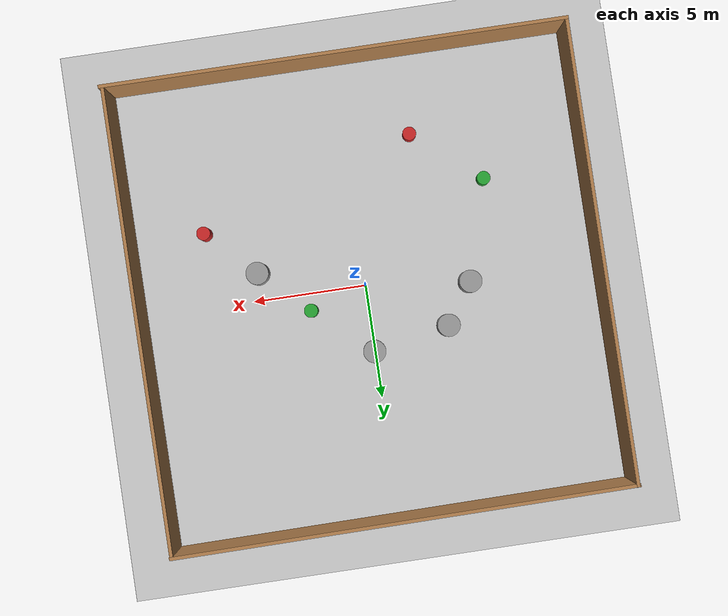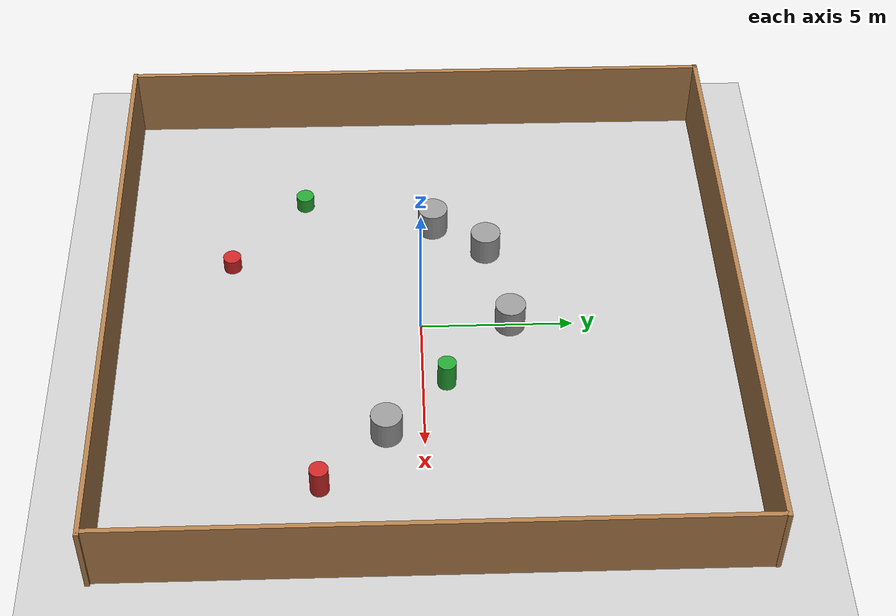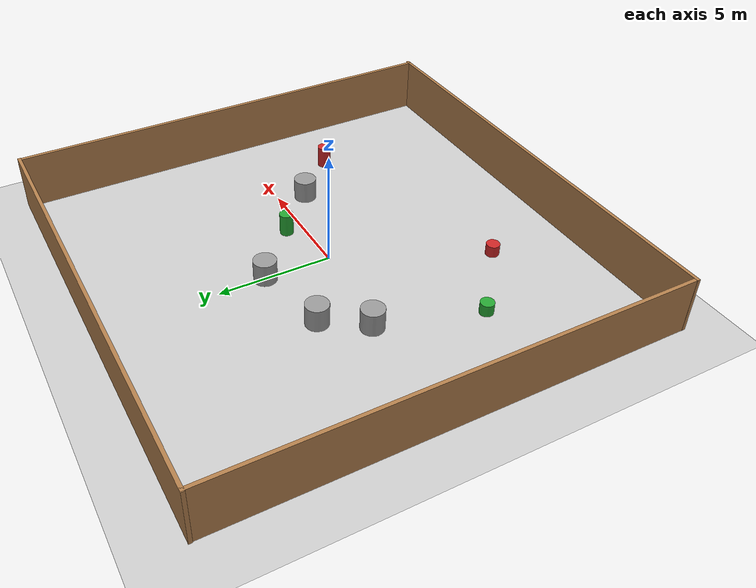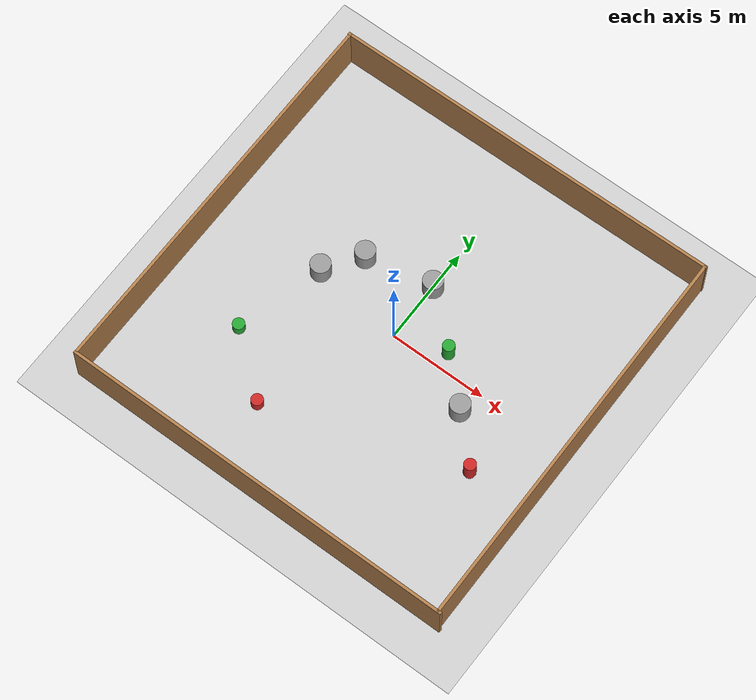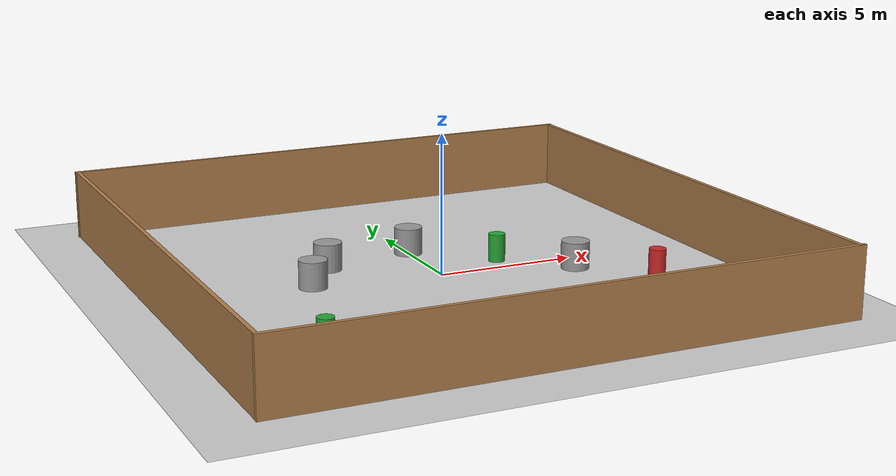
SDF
<sdf version="1.7">
 <world name="default">
  <light name="sun" type="directional">
   <pose>0 0 10 0 -0 0</pose>
   <diffuse>0.8 0.8 0.8 1</diffuse>
   <specular>0.2 0.2 0.2 1</specular>
   <attenuation>
    <range>1000</range>
    <constant>0.9</constant>
    <linear>0.01</linear>
    <quadratic>0.001</quadratic>
   </attenuation>
   <direction>-0.5 0.1 -0.9</direction>
   <spot><inner_angle>0</inner_angle><outer_angle>0</outer_angle><falloff>0</falloff></spot>
  </light>
  <model name="ground_plane">
   <static>1</static>
   <link name="link">
    <collision name="collision">
     <geometry><plane><normal>0 0 1</normal><size>100 100</size></plane></geometry>
     <surface>
      <contact><collide_bitmask>65535</collide_bitmask></contact>
      <friction><ode><mu>100</mu><mu2>50</mu2></ode></friction>
     </surface>
    </collision>
    <visual name="visual">
     <cast_shadows>0</cast_shadows>
     <geometry><plane><normal>0 0 1</normal><size>100 100</size></plane></geometry>
     <material>
      <script><uri>file://media/materials/scripts/gazebo.material</uri><name>Gazebo/Grey</name></script>
     </material>
    </visual>
   </link>
  </model>
  <gravity>0 0 -9.8</gravity>
  <magnetic_field>6e-06 2.3e-05 -4.2e-05</magnetic_field>
  <atmosphere type="adiabatic"/>
  <physics type="ode">
   <max_step_size>0.001</max_step_size>
   <real_time_factor>1</real_time_factor>
   <real_time_update_rate>1000</real_time_update_rate>
  </physics>
  <scene><ambient>0.4 0.4 0.4 1</ambient><background>0.7 0.7 0.7 1</background><shadows>1</shadows></scene>
  <spherical_coordinates>
   <surface_model>EARTH_WGS84</surface_model>
   <latitude_deg>0</latitude_deg>
   <longitude_deg>0</longitude_deg>
   <elevation>0</elevation>
   <heading_deg>0</heading_deg>
  </spherical_coordinates>
  <model name="box_house0301">
   <model name="box_house">
    <link name="Wall_4">
     <pose>-8.08058 -0.073775 0 0 -0 1.5708</pose>
     <inertial>
      <inertia><ixx>0</ixx><ixy>0</ixy><ixz>0</ixz><iyy>0</iyy><iyz>0</iyz><izz>0</izz></inertia>
      <mass>0</mass>
     </inertial>
     <visual name="Wall_4_Visual">
      <pose>0 0 1.25 0 -0 0</pose>
      <geometry><box><size>20.167 0.15 2.5</size></box></geometry>
      <material>
       <script><uri>file://media/materials/scripts/gazebo.material</uri><name>Gazebo/Wood</name></script>
       <ambient>1 1 1 1</ambient>
       <shader type="pixel"/>
      </material>
      <meta><layer>0</layer></meta>
     </visual>
     <collision name="Wall_4_Collision">
      <pose>0 0 1.25 0 -0 0</pose>
      <geometry><box><size>20.167 0.15 2.5</size></box></geometry>
      <surface>
       <friction>
        <ode><mu>1</mu><mu2>1</mu2><fdir1>0 0 0</fdir1><slip1>0</slip1><slip2>0</slip2></ode>
        <torsional>
         <coefficient>1</coefficient>
         <patch_radius>0</patch_radius>
         <surface_radius>0</surface_radius>
         <use_patch_radius>1</use_patch_radius>
         <ode><slip>0</slip></ode>
        </torsional>
       </friction>
       <bounce><restitution_coefficient>0</restitution_coefficient><threshold>1e+06</threshold></bounce>
       <contact>
        <collide_without_contact>0</collide_without_contact>
        <collide_without_contact_bitmask>1</collide_without_contact_bitmask>
        <collide_bitmask>1</collide_bitmask>
        <ode>
         <soft_cfm>0</soft_cfm>
         <soft_erp>0.2</soft_erp>
         <kp>1e+13</kp>
         <kd>1</kd>
         <max_vel>0.01</max_vel>
         <min_depth>0</min_depth>
        </ode>
        <bullet>
         <split_impulse>1</split_impulse>
         <split_impulse_penetration_threshold>-0.01</split_impulse_penetration_threshold>
         <soft_cfm>0</soft_cfm>
         <soft_erp>0.2</soft_erp>
         <kp>1e+13</kp>
         <kd>1</kd>
        </bullet>
       </contact>
      </surface>
     </collision>
    </link>
    <link name="Wall_4_clone">
     <pose>1.99967 -10.1978 0 0 -0 0.000695</pose>
     <inertial>
      <inertia><ixx>0</ixx><ixy>0</ixy><ixz>0</ixz><iyy>0</iyy><iyz>0</iyz><izz>0</izz></inertia>
      <mass>0</mass>
     </inertial>
     <visual name="Wall_4_Visual">
      <pose>0 0 1.25 0 -0 0</pose>
      <geometry><box><size>20.3338 0.15 2.5</size></box></geometry>
      <material>
       <script><uri>file://media/materials/scripts/gazebo.material</uri><name>Gazebo/Wood</name></script>
       <ambient>1 1 1 1</ambient>
       <shader type="pixel"/>
      </material>
      <meta><layer>0</layer></meta>
     </visual>
     <collision name="Wall_4_Collision">
      <pose>0 0 1.25 0 -0 0</pose>
      <geometry><box><size>20.3338 0.15 2.5</size></box></geometry>
      <surface>
       <friction>
        <ode><mu>1</mu><mu2>1</mu2><fdir1>0 0 0</fdir1><slip1>0</slip1><slip2>0</slip2></ode>
        <torsional>
         <coefficient>1</coefficient>
         <patch_radius>0</patch_radius>
         <surface_radius>0</surface_radius>
         <use_patch_radius>1</use_patch_radius>
         <ode><slip>0</slip></ode>
        </torsional>
       </friction>
       <bounce><restitution_coefficient>0</restitution_coefficient><threshold>1e+06</threshold></bounce>
       <contact>
        <collide_without_contact>0</collide_without_contact>
        <collide_without_contact_bitmask>1</collide_without_contact_bitmask>
        <collide_bitmask>1</collide_bitmask>
        <ode>
         <soft_cfm>0</soft_cfm>
         <soft_erp>0.2</soft_erp>
         <kp>1e+13</kp>
         <kd>1</kd>
         <max_vel>0.01</max_vel>
         <min_depth>0</min_depth>
        </ode>
        <bullet>
         <split_impulse>1</split_impulse>
         <split_impulse_penetration_threshold>-0.01</split_impulse_penetration_threshold>
         <soft_cfm>0</soft_cfm>
         <soft_erp>0.2</soft_erp>
         <kp>1e+13</kp>
         <kd>1</kd>
        </bullet>
       </contact>
      </surface>
     </collision>
    </link>
    <link name="Wall_4_clone_0">
     <pose>1.90617 10.0187 0 0 -0 -3.13386</pose>
     <inertial>
      <inertia><ixx>0</ixx><ixy>0</ixy><ixz>0</ixz><iyy>0</iyy><iyz>0</iyz><izz>0</izz></inertia>
      <mass>0</mass>
     </inertial>
     <visual name="Wall_4_Visual">
      <pose>0 0 1.25 0 -0 0</pose>
      <geometry><box><size>20.1884 0.15 2.5</size></box></geometry>
      <material>
       <script><uri>file://media/materials/scripts/gazebo.material</uri><name>Gazebo/Wood</name></script>
       <ambient>1 1 1 1</ambient>
       <shader type="pixel"/>
      </material>
      <meta><layer>0</layer></meta>
     </visual>
     <collision name="Wall_4_Collision">
      <pose>0 0 1.25 0 -0 0</pose>
      <geometry><box><size>20.1884 0.15 2.5</size></box></geometry>
      <surface>
       <friction>
        <ode><mu>1</mu><mu2>1</mu2><fdir1>0 0 0</fdir1><slip1>0</slip1><slip2>0</slip2></ode>
        <torsional>
         <coefficient>1</coefficient>
         <patch_radius>0</patch_radius>
         <surface_radius>0</surface_radius>
         <use_patch_radius>1</use_patch_radius>
         <ode><slip>0</slip></ode>
        </torsional>
       </friction>
       <bounce><restitution_coefficient>0</restitution_coefficient><threshold>1e+06</threshold></bounce>
       <contact>
        <collide_without_contact>0</collide_without_contact>
        <collide_without_contact_bitmask>1</collide_without_contact_bitmask>
        <collide_bitmask>1</collide_bitmask>
        <ode>
         <soft_cfm>0</soft_cfm>
         <soft_erp>0.2</soft_erp>
         <kp>1e+13</kp>
         <kd>1</kd>
         <max_vel>0.01</max_vel>
         <min_depth>0</min_depth>
        </ode>
        <bullet>
         <split_impulse>1</split_impulse>
         <split_impulse_penetration_threshold>-0.01</split_impulse_penetration_threshold>
         <soft_cfm>0</soft_cfm>
         <soft_erp>0.2</soft_erp>
         <kp>1e+13</kp>
         <kd>1</kd>
        </bullet>
       </contact>
      </surface>
     </collision>
    </link>
    <link name="Wall_4_clone_clone">
     <pose>11.9479 -0.044702 0 0 0 -1.56621</pose>
     <inertial>
      <inertia><ixx>0</ixx><ixy>0</ixy><ixz>0</ixz><iyy>0</iyy><iyz>0</iyz><izz>0</izz></inertia>
      <mass>0</mass>
     </inertial>
     <visual name="Wall_4_Visual">
      <pose>0 0 1.25 0 -0 0</pose>
      <geometry><box><size>20.3338 0.15 2.5</size></box></geometry>
      <material>
       <script><uri>file://media/materials/scripts/gazebo.material</uri><name>Gazebo/Wood</name></script>
       <ambient>1 1 1 1</ambient>
       <shader type="pixel"/>
      </material>
      <meta><layer>0</layer></meta>
     </visual>
     <collision name="Wall_4_Collision">
      <pose>0 0 1.25 0 -0 0</pose>
      <geometry><box><size>20.3338 0.15 2.5</size></box></geometry>
      <surface>
       <friction>
        <ode><mu>1</mu><mu2>1</mu2><fdir1>0 0 0</fdir1><slip1>0</slip1><slip2>0</slip2></ode>
        <torsional>
         <coefficient>1</coefficient>
         <patch_radius>0</patch_radius>
         <surface_radius>0</surface_radius>
         <use_patch_radius>1</use_patch_radius>
         <ode><slip>0</slip></ode>
        </torsional>
       </friction>
       <bounce><restitution_coefficient>0</restitution_coefficient><threshold>1e+06</threshold></bounce>
       <contact>
        <collide_without_contact>0</collide_without_contact>
        <collide_without_contact_bitmask>1</collide_without_contact_bitmask>
        <collide_bitmask>1</collide_bitmask>
        <ode>
         <soft_cfm>0</soft_cfm>
         <soft_erp>0.2</soft_erp>
         <kp>1e+13</kp>
         <kd>1</kd>
         <max_vel>0.01</max_vel>
         <min_depth>0</min_depth>
        </ode>
        <bullet>
         <split_impulse>1</split_impulse>
         <split_impulse_penetration_threshold>-0.01</split_impulse_penetration_threshold>
         <soft_cfm>0</soft_cfm>
         <soft_erp>0.2</soft_erp>
         <kp>1e+13</kp>
         <kd>1</kd>
        </bullet>
       </contact>
      </surface>
     </collision>
    </link>
    <static>1</static>
    <pose>-0.12382 0.131635 0 0 -0 0</pose>
   </model>
   <static>1</static>
   <pose>-1.9764 0.05996 0 0 -0 0</pose>
  </model>
  <model name="unit_cylinder">
   <pose>-4.57746 0.509885 0.499998 3e-06 -3e-06 0</pose>
   <link name="link">
    <inertial>
     <mass>1</mass>
     <inertia><ixx>0.145833</ixx><ixy>0</ixy><ixz>0</ixz><iyy>0.145833</iyy><iyz>0</iyz><izz>0.125</izz></inertia>
    </inertial>
    <collision name="collision">
     <geometry><cylinder><radius>0.5</radius><length>1</length></cylinder></geometry>
    </collision>
    <visual name="visual">
     <geometry><cylinder><radius>0.5</radius><length>1</length></cylinder></geometry>
     <material>
      <script><name>Gazebo/Grey</name><uri>file://media/materials/scripts/gazebo.material</uri></script>
     </material>
    </visual>
   </link>
  </model>
  <model name="unit_cylinder_0">
   <pose>0.021507 2.93289 0.5 0 -0 0</pose>
   <link name="link">
    <inertial>
     <mass>1</mass>
     <inertia><ixx>0.145833</ixx><ixy>0</ixy><ixz>0</ixz><iyy>0.145833</iyy><iyz>0</iyz><izz>0.125</izz></inertia>
    </inertial>
    <collision name="collision">
     <geometry><cylinder><radius>0.5</radius><length>1</length></cylinder></geometry>
    </collision>
    <visual name="visual">
     <geometry><cylinder><radius>0.5</radius><length>1</length></cylinder></geometry>
     <material>
      <script><name>Gazebo/Grey</name><uri>file://media/materials/scripts/gazebo.material</uri></script>
     </material>
    </visual>
   </link>
  </model>
  <model name="unit_cylinder_1">
   <pose>4.61033 -1.19516 0.5 0 -0 0</pose>
   <link name="link">
    <inertial>
     <mass>1</mass>
     <inertia><ixx>0.145833</ixx><ixy>0</ixy><ixz>0</ixz><iyy>0.145833</iyy><iyz>0</iyz><izz>0.125</izz></inertia>
    </inertial>
    <collision name="collision">
     <geometry><cylinder><radius>0.5</radius><length>1</length></cylinder></geometry>
    </collision>
    <visual name="visual">
     <geometry><cylinder><radius>0.5</radius><length>1</length></cylinder></geometry>
     <material>
      <script><name>Gazebo/Grey</name><uri>file://media/materials/scripts/gazebo.material</uri></script>
     </material>
    </visual>
   </link>
  </model>
  <model name="unit_cylinder_3">
   <pose>-3.35516 2.27644 0.5 0 -0 0.646065</pose>
   <link name="link">
    <inertial>
     <mass>1</mass>
     <inertia><ixx>0.145833</ixx><ixy>0</ixy><ixz>0</ixz><iyy>0.145833</iyy><iyz>0</iyz><izz>0.125</izz></inertia>
    </inertial>
    <collision name="collision">
     <geometry><cylinder><radius>0.5</radius><length>1</length></cylinder></geometry>
    </collision>
    <visual name="visual">
     <geometry><cylinder><radius>0.5</radius><length>1</length></cylinder></geometry>
     <material>
      <script><name>Gazebo/Grey</name><uri>file://media/materials/scripts/gazebo.material</uri></script>
     </material>
    </visual>
   </link>
  </model>
  <model name="Green_box">
   <link name="link">
    <inertial>
     <mass>5969.03</mass>
     <inertia><ixx>870.483</ixx><ixy>0</ixy><ixz>0</ixz><iyy>870.483</iyy><iyz>0</iyz><izz>746.128</izz></inertia>
    </inertial>
    <visual name="visual">
     <geometry><cylinder><radius>0.3</radius><length>1</length></cylinder></geometry>
     <material>
      <script><name>Gazebo/Green</name><uri>file://media/materials/scripts/gazebo.material</uri></script>
      <shader type="vertex"><normal_map>__default__</normal_map></shader>
      <ambient>0 1 0 1</ambient>
      <diffuse>0 1 0 1</diffuse>
      <specular>0.1 0.1 0.1 1</specular>
      <emissive>0 0 0 1</emissive>
     </material>
    </visual>
    <collision name="collision">
     <geometry><cylinder><radius>0.3</radius><length>1</length></cylinder></geometry>
     <surface>
      <friction>
       <ode><mu>1</mu><mu2>1</mu2><fdir1>0 0 0</fdir1><slip1>0</slip1><slip2>0</slip2></ode>
       <torsional>
        <coefficient>1</coefficient>
        <patch_radius>0</patch_radius>
        <surface_radius>0</surface_radius>
        <use_patch_radius>1</use_patch_radius>
        <ode><slip>0</slip></ode>
       </torsional>
      </friction>
      <bounce><restitution_coefficient>0</restitution_coefficient><threshold>1e+06</threshold></bounce>
      <contact>
       <collide_without_contact>0</collide_without_contact>
       <collide_without_contact_bitmask>1</collide_without_contact_bitmask>
       <collide_bitmask>1</collide_bitmask>
       <ode>
        <soft_cfm>0</soft_cfm>
        <soft_erp>0.2</soft_erp>
        <kp>1e+13</kp>
        <kd>1</kd>
        <max_vel>0.01</max_vel>
        <min_depth>0</min_depth>
       </ode>
       <bullet>
        <split_impulse>1</split_impulse>
        <split_impulse_penetration_threshold>-0.01</split_impulse_penetration_threshold>
        <soft_cfm>0</soft_cfm>
        <soft_erp>0.2</soft_erp>
        <kp>1e+13</kp>
        <kd>1</kd>
       </bullet>
      </contact>
     </surface>
    </collision>
   </link>
   <static>1</static>
   <pose>2.51548 0.764475 0.5 0 -0 0</pose>
  </model>
  <model name="unit_cylinder_2">
   <link name="link">
    <inertial>
     <mass>5969.03</mass>
     <inertia><ixx>870.483</ixx><ixy>0</ixy><ixz>0</ixz><iyy>870.483</iyy><iyz>0</iyz><izz>746.128</izz></inertia>
    </inertial>
    <visual name="visual">
     <geometry><cylinder><radius>0.3</radius><length>1</length></cylinder></geometry>
     <material>
      <script><name>Gazebo/Red</name><uri>file://media/materials/scripts/gazebo.material</uri></script>
      <shader type="vertex"><normal_map>__default__</normal_map></shader>
      <ambient>1 0 0 1</ambient>
      <diffuse>1 0 0 1</diffuse>
      <specular>0.1 0.1 0.1 1</specular>
      <emissive>0 0 0 1</emissive>
     </material>
    </visual>
    <collision name="collision">
     <geometry><cylinder><radius>0.3</radius><length>1</length></cylinder></geometry>
     <surface>
      <friction>
       <ode><mu>1</mu><mu2>1</mu2><fdir1>0 0 0</fdir1><slip1>0</slip1><slip2>0</slip2></ode>
       <torsional>
        <coefficient>1</coefficient>
        <patch_radius>0</patch_radius>
        <surface_radius>0</surface_radius>
        <use_patch_radius>1</use_patch_radius>
        <ode><slip>0</slip></ode>
       </torsional>
      </friction>
      <bounce><restitution_coefficient>0</restitution_coefficient><threshold>1e+06</threshold></bounce>
      <contact>
       <collide_without_contact>0</collide_without_contact>
       <collide_without_contact_bitmask>1</collide_without_contact_bitmask>
       <collide_bitmask>1</collide_bitmask>
       <ode>
        <soft_cfm>0</soft_cfm>
        <soft_erp>0.2</soft_erp>
        <kp>1e+13</kp>
        <kd>1</kd>
        <max_vel>0.01</max_vel>
        <min_depth>0</min_depth>
       </ode>
       <bullet>
        <split_impulse>1</split_impulse>
        <split_impulse_penetration_threshold>-0.01</split_impulse_penetration_threshold>
        <soft_cfm>0</soft_cfm>
        <soft_erp>0.2</soft_erp>
        <kp>1e+13</kp>
        <kd>1</kd>
       </bullet>
      </contact>
     </surface>
    </collision>
   </link>
   <static>1</static>
   <pose>6.68769 -3.26445 0.5 0 -0 0</pose>
  </model>
  <model name="yellow">
   <link name="link">
    <inertial>
     <mass>5969.03</mass>
     <inertia><ixx>870.483</ixx><ixy>0</ixy><ixz>0</ixz><iyy>870.483</iyy><iyz>0</iyz><izz>746.128</izz></inertia>
    </inertial>
    <pose>-0 0 -0.5 0 -0 0</pose>
    <visual name="visual">
     <geometry><cylinder><radius>0.3</radius><length>1</length></cylinder></geometry>
     <material>
      <script><name>Gazebo/Green</name><uri>file://media/materials/scripts/gazebo.material</uri></script>
      <shader type="vertex"><normal_map>__default__</normal_map></shader>
      <ambient>1 1 0 1</ambient>
      <diffuse>1 1 0 1</diffuse>
      <specular>1 1 0.1 1</specular>
      <emissive>0 0 0 1</emissive>
     </material>
    </visual>
    <collision name="collision">
     <geometry><cylinder><radius>0.3</radius><length>1</length></cylinder></geometry>
     <surface>
      <friction>
       <ode><mu>1</mu><mu2>1</mu2><fdir1>0 0 0</fdir1><slip1>0</slip1><slip2>0</slip2></ode>
       <torsional>
        <coefficient>1</coefficient>
        <patch_radius>0</patch_radius>
        <surface_radius>0</surface_radius>
        <use_patch_radius>1</use_patch_radius>
        <ode><slip>0</slip></ode>
       </torsional>
      </friction>
      <bounce><restitution_coefficient>0</restitution_coefficient><threshold>1e+06</threshold></bounce>
      <contact>
       <collide_without_contact>0</collide_without_contact>
       <collide_without_contact_bitmask>1</collide_without_contact_bitmask>
       <collide_bitmask>1</collide_bitmask>
       <ode>
        <soft_cfm>0</soft_cfm>
        <soft_erp>0.2</soft_erp>
        <kp>1e+13</kp>
        <kd>1</kd>
        <max_vel>0.01</max_vel>
        <min_depth>0</min_depth>
       </ode>
       <bullet>
        <split_impulse>1</split_impulse>
        <split_impulse_penetration_threshold>-0.01</split_impulse_penetration_threshold>
        <soft_cfm>0</soft_cfm>
        <soft_erp>0.2</soft_erp>
        <kp>1e+13</kp>
        <kd>1</kd>
       </bullet>
      </contact>
     </surface>
    </collision>
   </link>
   <static>1</static>
   <pose>-5.86215 -3.93321 0.5 0 -0 0</pose>
  </model>
  <model name="bule_box">
   <link name="link">
    <inertial>
     <mass>5969.03</mass>
     <inertia><ixx>870.483</ixx><ixy>0</ixy><ixz>0</ixz><iyy>870.483</iyy><iyz>0</iyz><izz>746.128</izz></inertia>
    </inertial>
    <pose>-0 0 -0.5 -0 -0 -0</pose>
    <visual name="visual">
     <geometry><cylinder><radius>0.3</radius><length>1</length></cylinder></geometry>
     <material>
      <script><name>Gazebo/Red</name><uri>file://media/materials/scripts/gazebo.material</uri></script>
      <shader type="vertex"><normal_map>__default__</normal_map></shader>
      <ambient>0 0 1 1</ambient>
      <diffuse>0 0 1 1</diffuse>
      <specular>0.1 0.1 0.1 1</specular>
      <emissive>0 0 0 1</emissive>
     </material>
    </visual>
    <collision name="collision">
     <geometry><cylinder><radius>0.3</radius><length>1</length></cylinder></geometry>
     <surface>
      <friction>
       <ode><mu>1</mu><mu2>1</mu2><fdir1>0 0 0</fdir1><slip1>0</slip1><slip2>0</slip2></ode>
       <torsional>
        <coefficient>1</coefficient>
        <patch_radius>0</patch_radius>
        <surface_radius>0</surface_radius>
        <use_patch_radius>1</use_patch_radius>
        <ode><slip>0</slip></ode>
       </torsional>
      </friction>
      <bounce><restitution_coefficient>0</restitution_coefficient><threshold>1e+06</threshold></bounce>
      <contact>
       <collide_without_contact>0</collide_without_contact>
       <collide_without_contact_bitmask>1</collide_without_contact_bitmask>
       <collide_bitmask>1</collide_bitmask>
       <ode>
        <soft_cfm>0</soft_cfm>
        <soft_erp>0.2</soft_erp>
        <kp>1e+13</kp>
        <kd>1</kd>
        <max_vel>0.01</max_vel>
        <min_depth>0</min_depth>
       </ode>
       <bullet>
        <split_impulse>1</split_impulse>
        <split_impulse_penetration_threshold>-0.01</split_impulse_penetration_threshold>
        <soft_cfm>0</soft_cfm>
        <soft_erp>0.2</soft_erp>
        <kp>1e+13</kp>
        <kd>1</kd>
       </bullet>
      </contact>
     </surface>
    </collision>
   </link>
   <static>1</static>
   <pose>-2.90072 -6.35846 0.5 0 -0 0</pose>
  </model>
 </world>
</sdf>
